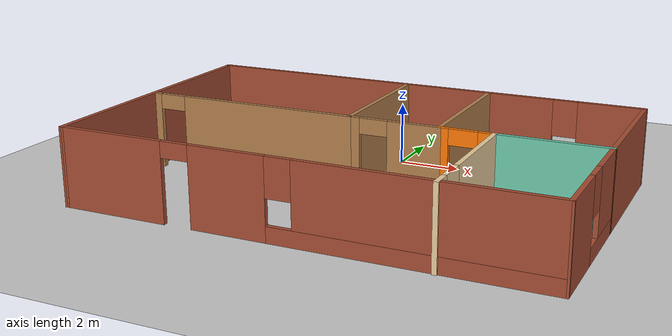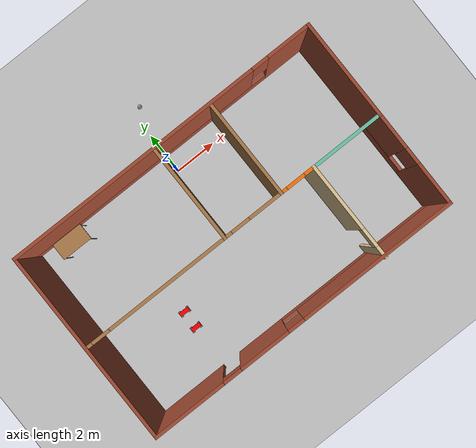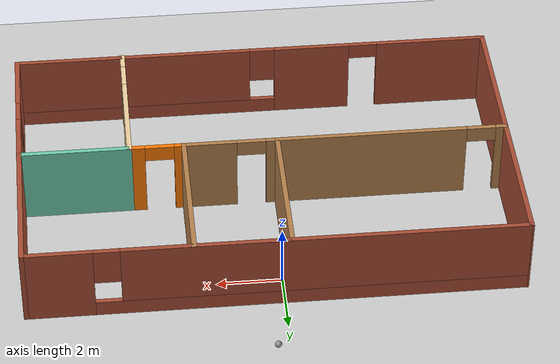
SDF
<sdf version="1.6">
 <world name="default">
  <plugin name="project1Plugin" filename="libhello.so"/>
  <light name="sun" type="directional">
   <pose>0 0 10 0 -0 0</pose>
   <diffuse>0.8 0.8 0.8 1</diffuse>
   <specular>0.2 0.2 0.2 1</specular>
   <attenuation>
    <range>1000</range>
    <constant>0.9</constant>
    <linear>0.01</linear>
    <quadratic>0.001</quadratic>
   </attenuation>
   <direction>-0.5 0.1 -0.9</direction>
  </light>
  <model name="ground_plane">
   <static>1</static>
   <link name="link">
    <collision name="collision">
     <geometry><plane><normal>0 0 1</normal><size>100 100</size></plane></geometry>
     <surface><friction><ode><mu>100</mu><mu2>50</mu2></ode></friction></surface>
    </collision>
    <visual name="visual">
     <cast_shadows>0</cast_shadows>
     <geometry><plane><normal>0 0 1</normal><size>100 100</size></plane></geometry>
     <material>
      <script><uri>file://media/materials/scripts/gazebo.material</uri><name>Gazebo/Grey</name></script>
     </material>
    </visual>
   </link>
  </model>
  <gravity>0 0 -9.8</gravity>
  <magnetic_field>6e-06 2.3e-05 -4.2e-05</magnetic_field>
  <atmosphere type="adiabatic"/>
  <physics name="default_physics" default="0" type="ode">
   <max_step_size>0.001</max_step_size>
   <real_time_factor>1</real_time_factor>
   <real_time_update_rate>1000</real_time_update_rate>
  </physics>
  <scene><ambient>0.4 0.4 0.4 1</ambient><background>0.7 0.7 0.7 1</background><shadows>1</shadows></scene>
  <spherical_coordinates>
   <surface_model>EARTH_WGS84</surface_model>
   <latitude_deg>0</latitude_deg>
   <longitude_deg>0</longitude_deg>
   <elevation>0</elevation>
   <heading_deg>0</heading_deg>
  </spherical_coordinates>
  <model name="project1building">
   <pose>0.210042 -3.70196 0 0 -0 0</pose>
   <link name="Wall_0">
    <pose>-0.005042 -4.54804 0 0 -0 0</pose>
    <visual name="Wall_0_Visual_0">
     <pose>-5.84722 0 1.25 0 -0 0</pose>
     <geometry><box><size>3.54556 0.15 2.5</size></box></geometry>
     <material>
      <script><uri>file://media/materials/scripts/gazebo.material</uri><name>Gazebo/Bricks</name></script>
      <ambient>1 1 1 1</ambient>
     </material>
     <meta><layer>0</layer></meta>
    </visual>
    <collision name="Wall_0_Collision_0">
     <geometry><box><size>3.54556 0.15 2.5</size></box></geometry>
     <pose>-5.84722 0 1.25 0 -0 0</pose>
    </collision>
    <visual name="Wall_0_Visual_1">
     <pose>-1.96069 0 1.25 0 -0 0</pose>
     <geometry><box><size>2.4275 0.15 2.5</size></box></geometry>
     <material>
      <script><uri>file://media/materials/scripts/gazebo.material</uri><name>Gazebo/Bricks</name></script>
      <ambient>1 1 1 1</ambient>
     </material>
     <meta><layer>0</layer></meta>
    </visual>
    <collision name="Wall_0_Collision_1">
     <geometry><box><size>2.4275 0.15 2.5</size></box></geometry>
     <pose>-1.96069 0 1.25 0 -0 0</pose>
    </collision>
    <visual name="Wall_0_Visual_2">
     <pose>3.43653 0 0.25 0 -0 0</pose>
     <geometry><box><size>8.36693 0.15 0.5</size></box></geometry>
     <material>
      <script><uri>file://media/materials/scripts/gazebo.material</uri><name>Gazebo/Bricks</name></script>
      <ambient>1 1 1 1</ambient>
     </material>
     <meta><layer>0</layer></meta>
    </visual>
    <collision name="Wall_0_Collision_2">
     <geometry><box><size>8.36693 0.15 0.5</size></box></geometry>
     <pose>3.43653 0 0.25 0 -0 0</pose>
    </collision>
    <visual name="Wall_0_Visual_3">
     <pose>3.83653 0 1.5 0 -0 0</pose>
     <geometry><box><size>7.56693 0.15 2</size></box></geometry>
     <material>
      <script><uri>file://media/materials/scripts/gazebo.material</uri><name>Gazebo/Bricks</name></script>
      <ambient>1 1 1 1</ambient>
     </material>
     <meta><layer>0</layer></meta>
    </visual>
    <collision name="Wall_0_Collision_3">
     <geometry><box><size>7.56693 0.15 2</size></box></geometry>
     <pose>3.83653 0 1.5 0 -0 0</pose>
    </collision>
    <visual name="Wall_0_Visual_4">
     <pose>-0.346935 0 1.9 0 -0 0</pose>
     <geometry><box><size>0.8 0.15 1.2</size></box></geometry>
     <material>
      <script><uri>file://media/materials/scripts/gazebo.material</uri><name>Gazebo/Bricks</name></script>
      <ambient>1 1 1 1</ambient>
     </material>
     <meta><layer>0</layer></meta>
    </visual>
    <collision name="Wall_0_Collision_4">
     <geometry><box><size>0.8 0.15 1.2</size></box></geometry>
     <pose>-0.346935 0 1.9 0 -0 0</pose>
    </collision>
    <visual name="Wall_0_Visual_5">
     <pose>-3.62444 0 2.25 0 -0 0</pose>
     <geometry><box><size>0.9 0.15 0.5</size></box></geometry>
     <material>
      <script><uri>file://media/materials/scripts/gazebo.material</uri><name>Gazebo/Bricks</name></script>
      <ambient>1 1 1 1</ambient>
     </material>
     <meta><layer>0</layer></meta>
    </visual>
    <collision name="Wall_0_Collision_5">
     <geometry><box><size>0.9 0.15 0.5</size></box></geometry>
     <pose>-3.62444 0 2.25 0 -0 0</pose>
    </collision>
   </link>
   <link name="Wall_11">
    <pose>4.16496 -2.30204 0 0 0 -1.5708</pose>
    <visual name="Wall_11_Visual_0">
     <pose>-0.750435 0 1.25 0 -0 0</pose>
     <geometry><box><size>3.24913 0.15 2.5</size></box></geometry>
     <material>
      <script><uri>file://media/materials/scripts/gazebo.material</uri><name>Gazebo/Grey</name></script>
      <ambient>0.921569 0.807843 0.615686 1</ambient>
     </material>
     <meta><layer>0</layer></meta>
    </visual>
    <collision name="Wall_11_Collision_0">
     <geometry><box><size>3.24913 0.15 2.5</size></box></geometry>
     <pose>-0.750435 0 1.25 0 -0 0</pose>
    </collision>
    <visual name="Wall_11_Visual_1">
     <pose>2.07457 0 1.25 0 -0 0</pose>
     <geometry><box><size>0.60087 0.15 2.5</size></box></geometry>
     <material>
      <script><uri>file://media/materials/scripts/gazebo.material</uri><name>Gazebo/Grey</name></script>
      <ambient>0.921569 0.807843 0.615686 1</ambient>
     </material>
     <meta><layer>0</layer></meta>
    </visual>
    <collision name="Wall_11_Collision_1">
     <geometry><box><size>0.60087 0.15 2.5</size></box></geometry>
     <pose>2.07457 0 1.25 0 -0 0</pose>
    </collision>
    <visual name="Wall_11_Visual_2">
     <pose>1.32413 0 2.25 0 -0 0</pose>
     <geometry><box><size>0.9 0.15 0.5</size></box></geometry>
     <material>
      <script><uri>file://media/materials/scripts/gazebo.material</uri><name>Gazebo/Grey</name></script>
      <ambient>0.921569 0.807843 0.615686 1</ambient>
     </material>
     <meta><layer>0</layer></meta>
    </visual>
    <collision name="Wall_11_Collision_2">
     <geometry><box><size>0.9 0.15 0.5</size></box></geometry>
     <pose>1.32413 0 2.25 0 -0 0</pose>
    </collision>
   </link>
   <link name="Wall_13">
    <pose>3.32546 -0.002041 0 0 -0 3.14159</pose>
    <visual name="Wall_13_Visual_0">
     <pose>-0.637533 0 1.25 0 -0 0</pose>
     <geometry><box><size>0.553935 0.15 2.5</size></box></geometry>
     <material>
      <script><uri>file://media/materials/scripts/gazebo.material</uri><name>Gazebo/Grey</name></script>
      <ambient>0.996078 0.47451 0.0196078 1</ambient>
     </material>
     <meta><layer>0</layer></meta>
    </visual>
    <collision name="Wall_13_Collision_0">
     <geometry><box><size>0.553935 0.15 2.5</size></box></geometry>
     <pose>-0.637533 0 1.25 0 -0 0</pose>
    </collision>
    <visual name="Wall_13_Visual_1">
     <pose>0.726967 0 1.25 0 -0 0</pose>
     <geometry><box><size>0.375065 0.15 2.5</size></box></geometry>
     <material>
      <script><uri>file://media/materials/scripts/gazebo.material</uri><name>Gazebo/Grey</name></script>
      <ambient>0.996078 0.47451 0.0196078 1</ambient>
     </material>
     <meta><layer>0</layer></meta>
    </visual>
    <collision name="Wall_13_Collision_1">
     <geometry><box><size>0.375065 0.15 2.5</size></box></geometry>
     <pose>0.726967 0 1.25 0 -0 0</pose>
    </collision>
    <visual name="Wall_13_Visual_2">
     <pose>0.089435 0 2.25 0 -0 0</pose>
     <geometry><box><size>0.9 0.15 0.5</size></box></geometry>
     <material>
      <script><uri>file://media/materials/scripts/gazebo.material</uri><name>Gazebo/Grey</name></script>
      <ambient>0.996078 0.47451 0.0196078 1</ambient>
     </material>
     <meta><layer>0</layer></meta>
    </visual>
    <collision name="Wall_13_Collision_2">
     <geometry><box><size>0.9 0.15 0.5</size></box></geometry>
     <pose>0.089435 0 2.25 0 -0 0</pose>
    </collision>
   </link>
   <link name="Wall_15">
    <collision name="Wall_15_Collision">
     <geometry><box><size>4.754 0.15 2.5</size></box></geometry>
     <pose>0 0 1.25 0 -0 0</pose>
    </collision>
    <visual name="Wall_15_Visual">
     <pose>0 0 1.25 0 -0 0</pose>
     <geometry><box><size>4.754 0.15 2.5</size></box></geometry>
     <material>
      <script><uri>file://media/materials/scripts/gazebo.material</uri><name>Gazebo/Bricks</name></script>
      <ambient>1 1 1 1</ambient>
     </material>
     <meta><layer>0</layer></meta>
    </visual>
    <pose>7.54996 2.29996 0 0 -0 1.5708</pose>
   </link>
   <link name="Wall_17">
    <pose>0.004958 4.60196 0 0 -0 3.14159</pose>
    <visual name="Wall_17_Visual_0">
     <pose>-6.53978 0 1.25 0 -0 0</pose>
     <geometry><box><size>2.16044 0.15 2.5</size></box></geometry>
     <material>
      <script><uri>file://media/materials/scripts/gazebo.material</uri><name>Gazebo/Bricks</name></script>
      <ambient>1 1 1 1</ambient>
     </material>
     <meta><layer>0</layer></meta>
    </visual>
    <collision name="Wall_17_Collision_0">
     <geometry><box><size>2.16044 0.15 2.5</size></box></geometry>
     <pose>-6.53978 0 1.25 0 -0 0</pose>
    </collision>
    <visual name="Wall_17_Visual_1">
     <pose>1.08022 0 0.25 0 -0 0</pose>
     <geometry><box><size>13.0796 0.15 0.5</size></box></geometry>
     <material>
      <script><uri>file://media/materials/scripts/gazebo.material</uri><name>Gazebo/Bricks</name></script>
      <ambient>1 1 1 1</ambient>
     </material>
     <meta><layer>0</layer></meta>
    </visual>
    <collision name="Wall_17_Collision_1">
     <geometry><box><size>13.0796 0.15 0.5</size></box></geometry>
     <pose>1.08022 0 0.25 0 -0 0</pose>
    </collision>
    <visual name="Wall_17_Visual_2">
     <pose>1.48022 0 1.5 0 -0 0</pose>
     <geometry><box><size>12.2796 0.15 2</size></box></geometry>
     <material>
      <script><uri>file://media/materials/scripts/gazebo.material</uri><name>Gazebo/Bricks</name></script>
      <ambient>1 1 1 1</ambient>
     </material>
     <meta><layer>0</layer></meta>
    </visual>
    <collision name="Wall_17_Collision_2">
     <geometry><box><size>12.2796 0.15 2</size></box></geometry>
     <pose>1.48022 0 1.5 0 -0 0</pose>
    </collision>
    <visual name="Wall_17_Visual_3">
     <pose>-5.05957 0 1.9 0 -0 0</pose>
     <geometry><box><size>0.8 0.15 1.2</size></box></geometry>
     <material>
      <script><uri>file://media/materials/scripts/gazebo.material</uri><name>Gazebo/Bricks</name></script>
      <ambient>1 1 1 1</ambient>
     </material>
     <meta><layer>0</layer></meta>
    </visual>
    <collision name="Wall_17_Collision_3">
     <geometry><box><size>0.8 0.15 1.2</size></box></geometry>
     <pose>-5.05957 0 1.9 0 -0 0</pose>
    </collision>
   </link>
   <link name="Wall_21">
    <collision name="Wall_21_Collision">
     <geometry><box><size>4.75 0.15 2.5</size></box></geometry>
     <pose>0 0 1.25 0 -0 0</pose>
    </collision>
    <visual name="Wall_21_Visual">
     <pose>0 0 1.25 0 -0 0</pose>
     <geometry><box><size>4.75 0.15 2.5</size></box></geometry>
     <material>
      <script><uri>file://media/materials/scripts/gazebo.material</uri><name>Gazebo/Wood</name></script>
      <ambient>1 1 1 1</ambient>
     </material>
     <meta><layer>0</layer></meta>
    </visual>
    <pose>2.48596 2.29796 0 0 -0 1.5708</pose>
   </link>
   <link name="Wall_23">
    <pose>1.03696 -0.002041 0 0 -0 3.14159</pose>
    <visual name="Wall_23_Visual_0">
     <pose>-0.666283 0 1.25 0 -0 0</pose>
     <geometry><box><size>1.71544 0.15 2.5</size></box></geometry>
     <material>
      <script><uri>file://media/materials/scripts/gazebo.material</uri><name>Gazebo/Wood</name></script>
      <ambient>1 1 1 1</ambient>
     </material>
     <meta><layer>0</layer></meta>
    </visual>
    <collision name="Wall_23_Collision_0">
     <geometry><box><size>1.71544 0.15 2.5</size></box></geometry>
     <pose>-0.666283 0 1.25 0 -0 0</pose>
    </collision>
    <visual name="Wall_23_Visual_1">
     <pose>1.30772 0 1.25 0 -0 0</pose>
     <geometry><box><size>0.432565 0.15 2.5</size></box></geometry>
     <material>
      <script><uri>file://media/materials/scripts/gazebo.material</uri><name>Gazebo/Wood</name></script>
      <ambient>1 1 1 1</ambient>
     </material>
     <meta><layer>0</layer></meta>
    </visual>
    <collision name="Wall_23_Collision_1">
     <geometry><box><size>0.432565 0.15 2.5</size></box></geometry>
     <pose>1.30772 0 1.25 0 -0 0</pose>
    </collision>
    <visual name="Wall_23_Visual_2">
     <pose>0.641435 0 2.25 0 -0 0</pose>
     <geometry><box><size>0.9 0.15 0.5</size></box></geometry>
     <material>
      <script><uri>file://media/materials/scripts/gazebo.material</uri><name>Gazebo/Wood</name></script>
      <ambient>1 1 1 1</ambient>
     </material>
     <meta><layer>0</layer></meta>
    </visual>
    <collision name="Wall_23_Collision_2">
     <geometry><box><size>0.9 0.15 0.5</size></box></geometry>
     <pose>0.641435 0 2.25 0 -0 0</pose>
    </collision>
   </link>
   <link name="Wall_25">
    <collision name="Wall_25_Collision">
     <geometry><box><size>4.75 0.15 2.5</size></box></geometry>
     <pose>0 0 1.25 0 -0 0</pose>
    </collision>
    <visual name="Wall_25_Visual">
     <pose>0 0 1.25 0 -0 0</pose>
     <geometry><box><size>4.75 0.15 2.5</size></box></geometry>
     <material>
      <script><uri>file://media/materials/scripts/gazebo.material</uri><name>Gazebo/Wood</name></script>
      <ambient>1 1 1 1</ambient>
     </material>
     <meta><layer>0</layer></meta>
    </visual>
    <pose>-0.412042 2.29796 0 0 -0 1.5708</pose>
   </link>
   <link name="Wall_27">
    <collision name="Wall_27_Collision">
     <geometry><box><size>9.30001 0.15 2.5</size></box></geometry>
     <pose>0 0 1.25 0 -0 0</pose>
    </collision>
    <visual name="Wall_27_Visual">
     <pose>0 0 1.25 0 -0 0</pose>
     <geometry><box><size>9.30001 0.15 2.5</size></box></geometry>
     <material>
      <script><uri>file://media/materials/scripts/gazebo.material</uri><name>Gazebo/Bricks</name></script>
      <ambient>1 1 1 1</ambient>
     </material>
     <meta><layer>0</layer></meta>
    </visual>
    <pose>-7.54504 0.026959 0 0 0 -1.57189</pose>
   </link>
   <link name="Wall_29">
    <pose>-3.96204 -0.002041 0 0 -0 3.14159</pose>
    <visual name="Wall_29_Visual_0">
     <pose>-0.628283 0 1.25 0 -0 0</pose>
     <geometry><box><size>5.99343 0.15 2.5</size></box></geometry>
     <material>
      <script><uri>file://media/materials/scripts/gazebo.material</uri><name>Gazebo/Wood</name></script>
      <ambient>1 1 1 1</ambient>
     </material>
     <meta><layer>0</layer></meta>
    </visual>
    <collision name="Wall_29_Collision_0">
     <geometry><box><size>5.99343 0.15 2.5</size></box></geometry>
     <pose>-0.628283 0 1.25 0 -0 0</pose>
    </collision>
    <visual name="Wall_29_Visual_1">
     <pose>3.44672 0 1.25 0 -0 0</pose>
     <geometry><box><size>0.356566 0.15 2.5</size></box></geometry>
     <material>
      <script><uri>file://media/materials/scripts/gazebo.material</uri><name>Gazebo/Wood</name></script>
      <ambient>1 1 1 1</ambient>
     </material>
     <meta><layer>0</layer></meta>
    </visual>
    <collision name="Wall_29_Collision_1">
     <geometry><box><size>0.356566 0.15 2.5</size></box></geometry>
     <pose>3.44672 0 1.25 0 -0 0</pose>
    </collision>
    <visual name="Wall_29_Visual_2">
     <pose>2.81843 0 2.25 0 -0 0</pose>
     <geometry><box><size>0.9 0.15 0.5</size></box></geometry>
     <material>
      <script><uri>file://media/materials/scripts/gazebo.material</uri><name>Gazebo/Wood</name></script>
      <ambient>1 1 1 1</ambient>
     </material>
     <meta><layer>0</layer></meta>
    </visual>
    <collision name="Wall_29_Collision_2">
     <geometry><box><size>0.9 0.15 0.5</size></box></geometry>
     <pose>2.81843 0 2.25 0 -0 0</pose>
    </collision>
   </link>
   <link name="Wall_3">
    <pose>7.54496 -2.27504 0 0 -0 1.5686</pose>
    <visual name="Wall_3_Visual_0">
     <pose>-1.29622 0 1.25 0 -0 0</pose>
     <geometry><box><size>2.10355 0.15 2.5</size></box></geometry>
     <material>
      <script><uri>file://media/materials/scripts/gazebo.material</uri><name>Gazebo/Bricks</name></script>
      <ambient>1 1 1 1</ambient>
     </material>
     <meta><layer>0</layer></meta>
    </visual>
    <collision name="Wall_3_Collision_0">
     <geometry><box><size>2.10355 0.15 2.5</size></box></geometry>
     <pose>-1.29622 0 1.25 0 -0 0</pose>
    </collision>
    <visual name="Wall_3_Visual_1">
     <pose>1.05178 0 0.25 0 -0 0</pose>
     <geometry><box><size>2.59245 0.15 0.5</size></box></geometry>
     <material>
      <script><uri>file://media/materials/scripts/gazebo.material</uri><name>Gazebo/Bricks</name></script>
      <ambient>1 1 1 1</ambient>
     </material>
     <meta><layer>0</layer></meta>
    </visual>
    <collision name="Wall_3_Collision_1">
     <geometry><box><size>2.59245 0.15 0.5</size></box></geometry>
     <pose>1.05178 0 0.25 0 -0 0</pose>
    </collision>
    <visual name="Wall_3_Visual_2">
     <pose>1.45178 0 1.5 0 -0 0</pose>
     <geometry><box><size>1.79245 0.15 2</size></box></geometry>
     <material>
      <script><uri>file://media/materials/scripts/gazebo.material</uri><name>Gazebo/Bricks</name></script>
      <ambient>1 1 1 1</ambient>
     </material>
     <meta><layer>0</layer></meta>
    </visual>
    <collision name="Wall_3_Collision_2">
     <geometry><box><size>1.79245 0.15 2</size></box></geometry>
     <pose>1.45178 0 1.5 0 -0 0</pose>
    </collision>
    <visual name="Wall_3_Visual_3">
     <pose>0.155554 0 1.9 0 -0 0</pose>
     <geometry><box><size>0.8 0.15 1.2</size></box></geometry>
     <material>
      <script><uri>file://media/materials/scripts/gazebo.material</uri><name>Gazebo/Bricks</name></script>
      <ambient>1 1 1 1</ambient>
     </material>
     <meta><layer>0</layer></meta>
    </visual>
    <collision name="Wall_3_Collision_3">
     <geometry><box><size>0.8 0.15 1.2</size></box></geometry>
     <pose>0.155554 0 1.9 0 -0 0</pose>
    </collision>
   </link>
   <link name="Wall_5">
    <collision name="Wall_5_Collision">
     <geometry><box><size>3.535 0.15 2.5</size></box></geometry>
     <pose>0 0 1.25 0 -0 0</pose>
    </collision>
    <visual name="Wall_5_Visual">
     <pose>0 0 1.25 0 -0 0</pose>
     <geometry><box><size>3.535 0.15 2.5</size></box></geometry>
     <material>
      <script><uri>file://media/materials/scripts/gazebo.material</uri><name>Gazebo/Grey</name></script>
      <ambient>0.435294 0.796078 0.67451 1</ambient>
     </material>
     <meta><layer>0</layer></meta>
    </visual>
    <pose>5.85746 -0.002041 0 0 -0 3.14159</pose>
   </link>
   <static>1</static>
  </model>
  <model name="table">
   <static>1</static>
   <link name="link">
    <collision name="surface">
     <pose>0 0 1 0 -0 0</pose>
     <geometry><box><size>1.5 0.8 0.03</size></box></geometry>
     <surface><friction><ode><mu>0.6</mu><mu2>0.6</mu2></ode></friction></surface>
    </collision>
    <visual name="visual1">
     <pose>0 0 1 0 -0 0</pose>
     <geometry><box><size>1.5 0.8 0.03</size></box></geometry>
     <material>
      <script><uri>file://media/materials/scripts/gazebo.material</uri><name>Gazebo/Wood</name></script>
     </material>
    </visual>
    <collision name="front_left_leg">
     <pose>0.68 0.38 0.5 0 -0 0</pose>
     <geometry><cylinder><radius>0.02</radius><length>1</length></cylinder></geometry>
    </collision>
    <visual name="front_left_leg">
     <pose>0.68 0.38 0.5 0 -0 0</pose>
     <geometry><cylinder><radius>0.02</radius><length>1</length></cylinder></geometry>
     <material>
      <script><uri>file://media/materials/scripts/gazebo.material</uri><name>Gazebo/Grey</name></script>
     </material>
    </visual>
    <collision name="front_right_leg">
     <pose>0.68 -0.38 0.5 0 -0 0</pose>
     <geometry><cylinder><radius>0.02</radius><length>1</length></cylinder></geometry>
    </collision>
    <visual name="front_right_leg">
     <pose>0.68 -0.38 0.5 0 -0 0</pose>
     <geometry><cylinder><radius>0.02</radius><length>1</length></cylinder></geometry>
     <material>
      <script><uri>file://media/materials/scripts/gazebo.material</uri><name>Gazebo/Grey</name></script>
     </material>
    </visual>
    <collision name="back_right_leg">
     <pose>-0.68 -0.38 0.5 0 -0 0</pose>
     <geometry><cylinder><radius>0.02</radius><length>1</length></cylinder></geometry>
    </collision>
    <visual name="back_right_leg">
     <pose>-0.68 -0.38 0.5 0 -0 0</pose>
     <geometry><cylinder><radius>0.02</radius><length>1</length></cylinder></geometry>
     <material>
      <script><uri>file://media/materials/scripts/gazebo.material</uri><name>Gazebo/Grey</name></script>
     </material>
    </visual>
    <collision name="back_left_leg">
     <pose>-0.68 0.38 0.5 0 -0 0</pose>
     <geometry><cylinder><radius>0.02</radius><length>1</length></cylinder></geometry>
    </collision>
    <visual name="back_left_leg">
     <pose>-0.68 0.38 0.5 0 -0 0</pose>
     <geometry><cylinder><radius>0.02</radius><length>1</length></cylinder></geometry>
     <material>
      <script><uri>file://media/materials/scripts/gazebo.material</uri><name>Gazebo/Grey</name></script>
     </material>
    </visual>
   </link>
   <pose>-5.51192 0.293056 0 0 -0 0</pose>
  </model>
  <model name="project1model">
   <link name="link_0">
    <pose>-3e-06 0.004024 0 0 -0 0</pose>
    <inertial>
     <mass>1</mass>
     <inertia>
      <ixx>0.166667</ixx>
      <ixy>0</ixy>
      <ixz>0</ixz>
      <iyy>0.166667</iyy>
      <iyz>0</iyz>
      <izz>0.166667</izz>
     </inertia>
    </inertial>
    <visual name="visual">
     <geometry><box><size>0.5 0.2 0.1</size></box></geometry>
     <material>
      <lighting>1</lighting>
      <script><uri>file://media/materials/scripts/gazebo.material</uri><name>Gazebo/Grey</name></script>
      <ambient>1 0 0 0</ambient>
      <diffuse>0.7 0.7 0.7 1</diffuse>
      <specular>0.01 0.01 0.01 1</specular>
      <emissive>0 0 0 1</emissive>
      <shader type="vertex"><normal_map>__default__</normal_map></shader>
     </material>
    </visual>
    <collision name="collision">
     <geometry><box><size>0.5 0.2 0.1</size></box></geometry>
     <surface>
      <friction>
       <ode><mu>1</mu><mu2>1</mu2><fdir1>0 0 0</fdir1><slip1>0</slip1><slip2>0</slip2></ode>
       <torsional>
        <coefficient>1</coefficient>
        <patch_radius>0</patch_radius>
        <surface_radius>0</surface_radius>
        <use_patch_radius>1</use_patch_radius>
        <ode><slip>0</slip></ode>
       </torsional>
      </friction>
      <bounce><restitution_coefficient>0</restitution_coefficient><threshold>1e+06</threshold></bounce>
      <contact>
       <collide_without_contact>0</collide_without_contact>
       <collide_without_contact_bitmask>1</collide_without_contact_bitmask>
       <collide_bitmask>1</collide_bitmask>
       <ode>
        <soft_cfm>0</soft_cfm>
        <soft_erp>0.2</soft_erp>
        <kp>1e+13</kp>
        <kd>1</kd>
        <max_vel>0.01</max_vel>
        <min_depth>0</min_depth>
       </ode>
       <bullet>
        <split_impulse>1</split_impulse>
        <split_impulse_penetration_threshold>-0.01</split_impulse_penetration_threshold>
        <soft_cfm>0</soft_cfm>
        <soft_erp>0.2</soft_erp>
        <kp>1e+13</kp>
        <kd>1</kd>
       </bullet>
      </contact>
     </surface>
    </collision>
   </link>
   <link name="link_1">
    <pose>-0.205 0.118964 0 1.5704 -0 0</pose>
    <inertial>
     <mass>1</mass>
     <inertia><ixx>0.145833</ixx><ixy>0</ixy><ixz>0</ixz><iyy>0.145833</iyy><iyz>0</iyz><izz>0.125</izz></inertia>
    </inertial>
    <visual name="visual">
     <geometry><cylinder><radius>0.055</radius><length>0.05</length></cylinder></geometry>
     <material>
      <lighting>1</lighting>
      <script><uri>file://media/materials/scripts/gazebo.material</uri><name>Gazebo/Grey</name></script>
      <ambient>0.3 0.3 0.3 1</ambient>
      <diffuse>0.7 0.7 0.7 1</diffuse>
      <specular>0.01 0.01 0.01 1</specular>
      <emissive>0 0 0 1</emissive>
      <shader type="vertex"><normal_map>__default__</normal_map></shader>
     </material>
    </visual>
    <collision name="collision">
     <geometry><cylinder><radius>0.055</radius><length>0.05</length></cylinder></geometry>
     <surface>
      <friction>
       <ode><mu>1</mu><mu2>1</mu2><fdir1>0 0 0</fdir1><slip1>0</slip1><slip2>0</slip2></ode>
       <torsional>
        <coefficient>1</coefficient>
        <patch_radius>0</patch_radius>
        <surface_radius>0</surface_radius>
        <use_patch_radius>1</use_patch_radius>
        <ode><slip>0</slip></ode>
       </torsional>
      </friction>
      <bounce><restitution_coefficient>0</restitution_coefficient><threshold>1e+06</threshold></bounce>
      <contact>
       <collide_without_contact>0</collide_without_contact>
       <collide_without_contact_bitmask>1</collide_without_contact_bitmask>
       <collide_bitmask>1</collide_bitmask>
       <ode>
        <soft_cfm>0</soft_cfm>
        <soft_erp>0.2</soft_erp>
        <kp>1e+13</kp>
        <kd>1</kd>
        <max_vel>0.01</max_vel>
        <min_depth>0</min_depth>
       </ode>
       <bullet>
        <split_impulse>1</split_impulse>
        <split_impulse_penetration_threshold>-0.01</split_impulse_penetration_threshold>
        <soft_cfm>0</soft_cfm>
        <soft_erp>0.2</soft_erp>
        <kp>1e+13</kp>
        <kd>1</kd>
       </bullet>
      </contact>
     </surface>
    </collision>
   </link>
   <link name="link_1_clone">
    <pose>-0.205 -0.120996 0 1.5704 -0 0</pose>
    <inertial>
     <mass>1</mass>
     <inertia><ixx>0.145833</ixx><ixy>0</ixy><ixz>0</ixz><iyy>0.145833</iyy><iyz>0</iyz><izz>0.125</izz></inertia>
    </inertial>
    <visual name="visual">
     <geometry><cylinder><radius>0.055</radius><length>0.05</length></cylinder></geometry>
     <material>
      <lighting>1</lighting>
      <script><uri>file://media/materials/scripts/gazebo.material</uri><name>Gazebo/Grey</name></script>
      <ambient>0 0.01 0.001 1</ambient>
      <diffuse>0.7 0.7 0.7 1</diffuse>
      <specular>0.01 0.01 0.01 1</specular>
      <emissive>0 0 0 1</emissive>
      <shader type="vertex"><normal_map>__default__</normal_map></shader>
     </material>
    </visual>
    <collision name="collision">
     <geometry><cylinder><radius>0.055</radius><length>0.05</length></cylinder></geometry>
     <surface>
      <friction>
       <ode><mu>1</mu><mu2>1</mu2><fdir1>0 0 0</fdir1><slip1>0</slip1><slip2>0</slip2></ode>
       <torsional>
        <coefficient>1</coefficient>
        <patch_radius>0</patch_radius>
        <surface_radius>0</surface_radius>
        <use_patch_radius>1</use_patch_radius>
        <ode><slip>0</slip></ode>
       </torsional>
      </friction>
      <bounce><restitution_coefficient>0</restitution_coefficient><threshold>1e+06</threshold></bounce>
      <contact>
       <collide_without_contact>0</collide_without_contact>
       <collide_without_contact_bitmask>1</collide_without_contact_bitmask>
       <collide_bitmask>1</collide_bitmask>
       <ode>
        <soft_cfm>0</soft_cfm>
        <soft_erp>0.2</soft_erp>
        <kp>1e+13</kp>
        <kd>1</kd>
        <max_vel>0.01</max_vel>
        <min_depth>0</min_depth>
       </ode>
       <bullet>
        <split_impulse>1</split_impulse>
        <split_impulse_penetration_threshold>-0.01</split_impulse_penetration_threshold>
        <soft_cfm>0</soft_cfm>
        <soft_erp>0.2</soft_erp>
        <kp>1e+13</kp>
        <kd>1</kd>
       </bullet>
      </contact>
     </surface>
    </collision>
    <collision name="collision_1">
     <geometry><cylinder><radius>0.055</radius><length>0.05</length></cylinder></geometry>
     <surface>
      <friction>
       <ode><mu>1</mu><mu2>1</mu2><fdir1>0 0 0</fdir1><slip1>0</slip1><slip2>0</slip2></ode>
       <torsional>
        <coefficient>1</coefficient>
        <patch_radius>0</patch_radius>
        <surface_radius>0</surface_radius>
        <use_patch_radius>1</use_patch_radius>
        <ode><slip>0</slip></ode>
       </torsional>
      </friction>
      <bounce><restitution_coefficient>0</restitution_coefficient><threshold>1e+06</threshold></bounce>
      <contact>
       <collide_without_contact>0</collide_without_contact>
       <collide_without_contact_bitmask>1</collide_without_contact_bitmask>
       <collide_bitmask>1</collide_bitmask>
       <ode>
        <soft_cfm>0</soft_cfm>
        <soft_erp>0.2</soft_erp>
        <kp>1e+13</kp>
        <kd>1</kd>
        <max_vel>0.01</max_vel>
        <min_depth>0</min_depth>
       </ode>
       <bullet>
        <split_impulse>1</split_impulse>
        <split_impulse_penetration_threshold>-0.01</split_impulse_penetration_threshold>
        <soft_cfm>0</soft_cfm>
        <soft_erp>0.2</soft_erp>
        <kp>1e+13</kp>
        <kd>1</kd>
       </bullet>
      </contact>
     </surface>
    </collision>
   </link>
   <link name="link_1_clone_0">
    <pose>0.205 0.119004 0 1.5704 -0 0</pose>
    <inertial>
     <mass>1</mass>
     <inertia><ixx>0.145833</ixx><ixy>0</ixy><ixz>0</ixz><iyy>0.145833</iyy><iyz>0</iyz><izz>0.125</izz></inertia>
    </inertial>
    <visual name="visual">
     <geometry><cylinder><radius>0.055</radius><length>0.05</length></cylinder></geometry>
     <material>
      <lighting>1</lighting>
      <script><uri>file://media/materials/scripts/gazebo.material</uri><name>Gazebo/Grey</name></script>
      <ambient>0.3 0.3 0.3 1</ambient>
      <diffuse>0.7 0.7 0.7 1</diffuse>
      <specular>0.01 0.01 0.01 1</specular>
      <emissive>0 0 0 1</emissive>
      <shader type="vertex"><normal_map>__default__</normal_map></shader>
     </material>
    </visual>
    <collision name="collision">
     <geometry><cylinder><radius>0.055</radius><length>0.05</length></cylinder></geometry>
     <surface>
      <friction>
       <ode><mu>1</mu><mu2>1</mu2><fdir1>0 0 0</fdir1><slip1>0</slip1><slip2>0</slip2></ode>
       <torsional>
        <coefficient>1</coefficient>
        <patch_radius>0</patch_radius>
        <surface_radius>0</surface_radius>
        <use_patch_radius>1</use_patch_radius>
        <ode><slip>0</slip></ode>
       </torsional>
      </friction>
      <bounce><restitution_coefficient>0</restitution_coefficient><threshold>1e+06</threshold></bounce>
      <contact>
       <collide_without_contact>0</collide_without_contact>
       <collide_without_contact_bitmask>1</collide_without_contact_bitmask>
       <collide_bitmask>1</collide_bitmask>
       <ode>
        <soft_cfm>0</soft_cfm>
        <soft_erp>0.2</soft_erp>
        <kp>1e+13</kp>
        <kd>1</kd>
        <max_vel>0.01</max_vel>
        <min_depth>0</min_depth>
       </ode>
       <bullet>
        <split_impulse>1</split_impulse>
        <split_impulse_penetration_threshold>-0.01</split_impulse_penetration_threshold>
        <soft_cfm>0</soft_cfm>
        <soft_erp>0.2</soft_erp>
        <kp>1e+13</kp>
        <kd>1</kd>
       </bullet>
      </contact>
     </surface>
    </collision>
   </link>
   <link name="link_1_clone_1">
    <pose>0.205 -0.120996 0 1.5704 -0 0</pose>
    <inertial>
     <mass>1</mass>
     <inertia><ixx>0.145833</ixx><ixy>0</ixy><ixz>0</ixz><iyy>0.145833</iyy><iyz>0</iyz><izz>0.125</izz></inertia>
    </inertial>
    <visual name="visual">
     <geometry><cylinder><radius>0.055</radius><length>0.05</length></cylinder></geometry>
     <material>
      <lighting>1</lighting>
      <script><uri>file://media/materials/scripts/gazebo.material</uri><name>Gazebo/Grey</name></script>
      <ambient>0.3 0.3 0.3 1</ambient>
      <diffuse>0.7 0.7 0.7 1</diffuse>
      <specular>0.01 0.01 0.01 1</specular>
      <emissive>0 0 0 1</emissive>
      <shader type="vertex"><normal_map>__default__</normal_map></shader>
     </material>
    </visual>
    <collision name="collision">
     <geometry><cylinder><radius>0.055</radius><length>0.05</length></cylinder></geometry>
     <surface>
      <friction>
       <ode><mu>1</mu><mu2>1</mu2><fdir1>0 0 0</fdir1><slip1>0</slip1><slip2>0</slip2></ode>
       <torsional>
        <coefficient>1</coefficient>
        <patch_radius>0</patch_radius>
        <surface_radius>0</surface_radius>
        <use_patch_radius>1</use_patch_radius>
        <ode><slip>0</slip></ode>
       </torsional>
      </friction>
      <bounce><restitution_coefficient>0</restitution_coefficient><threshold>1e+06</threshold></bounce>
      <contact>
       <collide_without_contact>0</collide_without_contact>
       <collide_without_contact_bitmask>1</collide_without_contact_bitmask>
       <collide_bitmask>1</collide_bitmask>
       <ode>
        <soft_cfm>0</soft_cfm>
        <soft_erp>0.2</soft_erp>
        <kp>1e+13</kp>
        <kd>1</kd>
        <max_vel>0.01</max_vel>
        <min_depth>0</min_depth>
       </ode>
       <bullet>
        <split_impulse>1</split_impulse>
        <split_impulse_penetration_threshold>-0.01</split_impulse_penetration_threshold>
        <soft_cfm>0</soft_cfm>
        <soft_erp>0.2</soft_erp>
        <kp>1e+13</kp>
        <kd>1</kd>
       </bullet>
      </contact>
     </surface>
    </collision>
   </link>
   <joint name="link_0_JOINT_1" type="revolute">
    <parent>link_0</parent>
    <child>link_1</child>
    <axis>
     <xyz>0 0 1</xyz>
     <use_parent_model_frame>0</use_parent_model_frame>
     <limit>
      <lower>-1.79769e+308</lower>
      <upper>1.79769e+308</upper>
      <effort>-1</effort>
      <velocity>-1</velocity>
     </limit>
     <dynamics>
      <spring_reference>0</spring_reference>
      <spring_stiffness>0</spring_stiffness>
      <damping>0</damping>
      <friction>0</friction>
     </dynamics>
    </axis>
    <physics>
     <ode><limit><cfm>0</cfm><erp>0.2</erp></limit><suspension><cfm>0</cfm><erp>0.2</erp></suspension></ode>
    </physics>
   </joint>
   <joint name="link_0_JOINT_5" type="revolute">
    <parent>link_0</parent>
    <child>link_1_clone_0</child>
    <axis>
     <xyz>0 0 1</xyz>
     <use_parent_model_frame>0</use_parent_model_frame>
     <limit>
      <lower>-1.79769e+308</lower>
      <upper>1.79769e+308</upper>
      <effort>-1</effort>
      <velocity>-1</velocity>
     </limit>
     <dynamics>
      <spring_reference>0</spring_reference>
      <spring_stiffness>0</spring_stiffness>
      <damping>0</damping>
      <friction>0</friction>
     </dynamics>
    </axis>
    <physics>
     <ode><limit><cfm>0</cfm><erp>0.2</erp></limit><suspension><cfm>0</cfm><erp>0.2</erp></suspension></ode>
    </physics>
   </joint>
   <joint name="link_0_JOINT_6" type="revolute">
    <parent>link_0</parent>
    <child>link_1_clone_1</child>
    <axis>
     <xyz>1 0 0</xyz>
     <use_parent_model_frame>0</use_parent_model_frame>
     <limit>
      <lower>-1.79769e+308</lower>
      <upper>1.79769e+308</upper>
      <effort>-1</effort>
      <velocity>-1</velocity>
     </limit>
     <dynamics>
      <spring_reference>0</spring_reference>
      <spring_stiffness>0</spring_stiffness>
      <damping>0</damping>
      <friction>0</friction>
     </dynamics>
    </axis>
    <physics>
     <ode><limit><cfm>0</cfm><erp>0.2</erp></limit><suspension><cfm>0</cfm><erp>0.2</erp></suspension></ode>
    </physics>
   </joint>
   <joint name="link_0_JOINT_7" type="revolute">
    <parent>link_0</parent>
    <child>link_1_clone</child>
    <axis>
     <xyz>0 0 1</xyz>
     <use_parent_model_frame>0</use_parent_model_frame>
     <limit>
      <lower>-1.79769e+308</lower>
      <upper>1.79769e+308</upper>
      <effort>-1</effort>
      <velocity>-1</velocity>
     </limit>
     <dynamics>
      <spring_reference>0</spring_reference>
      <spring_stiffness>0</spring_stiffness>
      <damping>0</damping>
      <friction>0</friction>
     </dynamics>
    </axis>
    <physics>
     <ode><limit><cfm>0</cfm><erp>0.2</erp></limit><suspension><cfm>0</cfm><erp>0.2</erp></suspension></ode>
    </physics>
   </joint>
   <static>0</static>
   <pose>-3.79097 -6.05865 0.055008 3.6e-05 1.6e-05 -0.009772</pose>
  </model>
  <model name="project1model_clone">
   <link name="link_0">
    <pose>-3e-06 0.004024 0 0 -0 0</pose>
    <inertial>
     <mass>1</mass>
     <inertia>
      <ixx>0.166667</ixx>
      <ixy>0</ixy>
      <ixz>0</ixz>
      <iyy>0.166667</iyy>
      <iyz>0</iyz>
      <izz>0.166667</izz>
     </inertia>
    </inertial>
    <visual name="visual">
     <geometry><box><size>0.5 0.2 0.1</size></box></geometry>
     <material>
      <lighting>1</lighting>
      <script><uri>file://media/materials/scripts/gazebo.material</uri><name>Gazebo/Grey</name></script>
      <ambient>1 0 0 0</ambient>
      <diffuse>0.7 0.7 0.7 1</diffuse>
      <specular>0.01 0.01 0.01 1</specular>
      <emissive>0 0 0 1</emissive>
      <shader type="vertex"><normal_map>__default__</normal_map></shader>
     </material>
    </visual>
    <collision name="collision">
     <geometry><box><size>0.5 0.2 0.1</size></box></geometry>
     <surface>
      <friction>
       <ode><mu>1</mu><mu2>1</mu2><fdir1>0 0 0</fdir1><slip1>0</slip1><slip2>0</slip2></ode>
       <torsional>
        <coefficient>1</coefficient>
        <patch_radius>0</patch_radius>
        <surface_radius>0</surface_radius>
        <use_patch_radius>1</use_patch_radius>
        <ode><slip>0</slip></ode>
       </torsional>
      </friction>
      <bounce><restitution_coefficient>0</restitution_coefficient><threshold>1e+06</threshold></bounce>
      <contact>
       <collide_without_contact>0</collide_without_contact>
       <collide_without_contact_bitmask>1</collide_without_contact_bitmask>
       <collide_bitmask>1</collide_bitmask>
       <ode>
        <soft_cfm>0</soft_cfm>
        <soft_erp>0.2</soft_erp>
        <kp>1e+13</kp>
        <kd>1</kd>
        <max_vel>0.01</max_vel>
        <min_depth>0</min_depth>
       </ode>
       <bullet>
        <split_impulse>1</split_impulse>
        <split_impulse_penetration_threshold>-0.01</split_impulse_penetration_threshold>
        <soft_cfm>0</soft_cfm>
        <soft_erp>0.2</soft_erp>
        <kp>1e+13</kp>
        <kd>1</kd>
       </bullet>
      </contact>
     </surface>
    </collision>
   </link>
   <link name="link_1">
    <pose>-0.205 0.118964 0 1.5704 -0 0</pose>
    <inertial>
     <mass>1</mass>
     <inertia><ixx>0.145833</ixx><ixy>0</ixy><ixz>0</ixz><iyy>0.145833</iyy><iyz>0</iyz><izz>0.125</izz></inertia>
    </inertial>
    <visual name="visual">
     <geometry><cylinder><radius>0.055</radius><length>0.05</length></cylinder></geometry>
     <material>
      <lighting>1</lighting>
      <script><uri>file://media/materials/scripts/gazebo.material</uri><name>Gazebo/Grey</name></script>
      <ambient>0.3 0.3 0.3 1</ambient>
      <diffuse>0.7 0.7 0.7 1</diffuse>
      <specular>0.01 0.01 0.01 1</specular>
      <emissive>0 0 0 1</emissive>
      <shader type="vertex"><normal_map>__default__</normal_map></shader>
     </material>
    </visual>
    <collision name="collision">
     <geometry><cylinder><radius>0.055</radius><length>0.05</length></cylinder></geometry>
     <surface>
      <friction>
       <ode><mu>1</mu><mu2>1</mu2><fdir1>0 0 0</fdir1><slip1>0</slip1><slip2>0</slip2></ode>
       <torsional>
        <coefficient>1</coefficient>
        <patch_radius>0</patch_radius>
        <surface_radius>0</surface_radius>
        <use_patch_radius>1</use_patch_radius>
        <ode><slip>0</slip></ode>
       </torsional>
      </friction>
      <bounce><restitution_coefficient>0</restitution_coefficient><threshold>1e+06</threshold></bounce>
      <contact>
       <collide_without_contact>0</collide_without_contact>
       <collide_without_contact_bitmask>1</collide_without_contact_bitmask>
       <collide_bitmask>1</collide_bitmask>
       <ode>
        <soft_cfm>0</soft_cfm>
        <soft_erp>0.2</soft_erp>
        <kp>1e+13</kp>
        <kd>1</kd>
        <max_vel>0.01</max_vel>
        <min_depth>0</min_depth>
       </ode>
       <bullet>
        <split_impulse>1</split_impulse>
        <split_impulse_penetration_threshold>-0.01</split_impulse_penetration_threshold>
        <soft_cfm>0</soft_cfm>
        <soft_erp>0.2</soft_erp>
        <kp>1e+13</kp>
        <kd>1</kd>
       </bullet>
      </contact>
     </surface>
    </collision>
   </link>
   <link name="link_1_clone">
    <pose>-0.205 -0.120996 0 1.5704 -0 0</pose>
    <inertial>
     <mass>1</mass>
     <inertia><ixx>0.145833</ixx><ixy>0</ixy><ixz>0</ixz><iyy>0.145833</iyy><iyz>0</iyz><izz>0.125</izz></inertia>
    </inertial>
    <visual name="visual">
     <geometry><cylinder><radius>0.055</radius><length>0.05</length></cylinder></geometry>
     <material>
      <lighting>1</lighting>
      <script><uri>file://media/materials/scripts/gazebo.material</uri><name>Gazebo/Grey</name></script>
      <ambient>0 0.01 0.001 1</ambient>
      <diffuse>0.7 0.7 0.7 1</diffuse>
      <specular>0.01 0.01 0.01 1</specular>
      <emissive>0 0 0 1</emissive>
      <shader type="vertex"><normal_map>__default__</normal_map></shader>
     </material>
    </visual>
    <collision name="collision">
     <geometry><cylinder><radius>0.055</radius><length>0.05</length></cylinder></geometry>
     <surface>
      <friction>
       <ode><mu>1</mu><mu2>1</mu2><fdir1>0 0 0</fdir1><slip1>0</slip1><slip2>0</slip2></ode>
       <torsional>
        <coefficient>1</coefficient>
        <patch_radius>0</patch_radius>
        <surface_radius>0</surface_radius>
        <use_patch_radius>1</use_patch_radius>
        <ode><slip>0</slip></ode>
       </torsional>
      </friction>
      <bounce><restitution_coefficient>0</restitution_coefficient><threshold>1e+06</threshold></bounce>
      <contact>
       <collide_without_contact>0</collide_without_contact>
       <collide_without_contact_bitmask>1</collide_without_contact_bitmask>
       <collide_bitmask>1</collide_bitmask>
       <ode>
        <soft_cfm>0</soft_cfm>
        <soft_erp>0.2</soft_erp>
        <kp>1e+13</kp>
        <kd>1</kd>
        <max_vel>0.01</max_vel>
        <min_depth>0</min_depth>
       </ode>
       <bullet>
        <split_impulse>1</split_impulse>
        <split_impulse_penetration_threshold>-0.01</split_impulse_penetration_threshold>
        <soft_cfm>0</soft_cfm>
        <soft_erp>0.2</soft_erp>
        <kp>1e+13</kp>
        <kd>1</kd>
       </bullet>
      </contact>
     </surface>
    </collision>
    <collision name="collision_1">
     <geometry><cylinder><radius>0.055</radius><length>0.05</length></cylinder></geometry>
     <surface>
      <friction>
       <ode><mu>1</mu><mu2>1</mu2><fdir1>0 0 0</fdir1><slip1>0</slip1><slip2>0</slip2></ode>
       <torsional>
        <coefficient>1</coefficient>
        <patch_radius>0</patch_radius>
        <surface_radius>0</surface_radius>
        <use_patch_radius>1</use_patch_radius>
        <ode><slip>0</slip></ode>
       </torsional>
      </friction>
      <bounce><restitution_coefficient>0</restitution_coefficient><threshold>1e+06</threshold></bounce>
      <contact>
       <collide_without_contact>0</collide_without_contact>
       <collide_without_contact_bitmask>1</collide_without_contact_bitmask>
       <collide_bitmask>1</collide_bitmask>
       <ode>
        <soft_cfm>0</soft_cfm>
        <soft_erp>0.2</soft_erp>
        <kp>1e+13</kp>
        <kd>1</kd>
        <max_vel>0.01</max_vel>
        <min_depth>0</min_depth>
       </ode>
       <bullet>
        <split_impulse>1</split_impulse>
        <split_impulse_penetration_threshold>-0.01</split_impulse_penetration_threshold>
        <soft_cfm>0</soft_cfm>
        <soft_erp>0.2</soft_erp>
        <kp>1e+13</kp>
        <kd>1</kd>
       </bullet>
      </contact>
     </surface>
    </collision>
   </link>
   <link name="link_1_clone_0">
    <pose>0.205 0.119004 0 1.5704 -0 0</pose>
    <inertial>
     <mass>1</mass>
     <inertia><ixx>0.145833</ixx><ixy>0</ixy><ixz>0</ixz><iyy>0.145833</iyy><iyz>0</iyz><izz>0.125</izz></inertia>
    </inertial>
    <visual name="visual">
     <geometry><cylinder><radius>0.055</radius><length>0.05</length></cylinder></geometry>
     <material>
      <lighting>1</lighting>
      <script><uri>file://media/materials/scripts/gazebo.material</uri><name>Gazebo/Grey</name></script>
      <ambient>0.3 0.3 0.3 1</ambient>
      <diffuse>0.7 0.7 0.7 1</diffuse>
      <specular>0.01 0.01 0.01 1</specular>
      <emissive>0 0 0 1</emissive>
      <shader type="vertex"><normal_map>__default__</normal_map></shader>
     </material>
    </visual>
    <collision name="collision">
     <geometry><cylinder><radius>0.055</radius><length>0.05</length></cylinder></geometry>
     <surface>
      <friction>
       <ode><mu>1</mu><mu2>1</mu2><fdir1>0 0 0</fdir1><slip1>0</slip1><slip2>0</slip2></ode>
       <torsional>
        <coefficient>1</coefficient>
        <patch_radius>0</patch_radius>
        <surface_radius>0</surface_radius>
        <use_patch_radius>1</use_patch_radius>
        <ode><slip>0</slip></ode>
       </torsional>
      </friction>
      <bounce><restitution_coefficient>0</restitution_coefficient><threshold>1e+06</threshold></bounce>
      <contact>
       <collide_without_contact>0</collide_without_contact>
       <collide_without_contact_bitmask>1</collide_without_contact_bitmask>
       <collide_bitmask>1</collide_bitmask>
       <ode>
        <soft_cfm>0</soft_cfm>
        <soft_erp>0.2</soft_erp>
        <kp>1e+13</kp>
        <kd>1</kd>
        <max_vel>0.01</max_vel>
        <min_depth>0</min_depth>
       </ode>
       <bullet>
        <split_impulse>1</split_impulse>
        <split_impulse_penetration_threshold>-0.01</split_impulse_penetration_threshold>
        <soft_cfm>0</soft_cfm>
        <soft_erp>0.2</soft_erp>
        <kp>1e+13</kp>
        <kd>1</kd>
       </bullet>
      </contact>
     </surface>
    </collision>
   </link>
   <link name="link_1_clone_1">
    <pose>0.205 -0.120996 0 1.5704 -0 0</pose>
    <inertial>
     <mass>1</mass>
     <inertia><ixx>0.145833</ixx><ixy>0</ixy><ixz>0</ixz><iyy>0.145833</iyy><iyz>0</iyz><izz>0.125</izz></inertia>
    </inertial>
    <visual name="visual">
     <geometry><cylinder><radius>0.055</radius><length>0.05</length></cylinder></geometry>
     <material>
      <lighting>1</lighting>
      <script><uri>file://media/materials/scripts/gazebo.material</uri><name>Gazebo/Grey</name></script>
      <ambient>0.3 0.3 0.3 1</ambient>
      <diffuse>0.7 0.7 0.7 1</diffuse>
      <specular>0.01 0.01 0.01 1</specular>
      <emissive>0 0 0 1</emissive>
      <shader type="vertex"><normal_map>__default__</normal_map></shader>
     </material>
    </visual>
    <collision name="collision">
     <geometry><cylinder><radius>0.055</radius><length>0.05</length></cylinder></geometry>
     <surface>
      <friction>
       <ode><mu>1</mu><mu2>1</mu2><fdir1>0 0 0</fdir1><slip1>0</slip1><slip2>0</slip2></ode>
       <torsional>
        <coefficient>1</coefficient>
        <patch_radius>0</patch_radius>
        <surface_radius>0</surface_radius>
        <use_patch_radius>1</use_patch_radius>
        <ode><slip>0</slip></ode>
       </torsional>
      </friction>
      <bounce><restitution_coefficient>0</restitution_coefficient><threshold>1e+06</threshold></bounce>
      <contact>
       <collide_without_contact>0</collide_without_contact>
       <collide_without_contact_bitmask>1</collide_without_contact_bitmask>
       <collide_bitmask>1</collide_bitmask>
       <ode>
        <soft_cfm>0</soft_cfm>
        <soft_erp>0.2</soft_erp>
        <kp>1e+13</kp>
        <kd>1</kd>
        <max_vel>0.01</max_vel>
        <min_depth>0</min_depth>
       </ode>
       <bullet>
        <split_impulse>1</split_impulse>
        <split_impulse_penetration_threshold>-0.01</split_impulse_penetration_threshold>
        <soft_cfm>0</soft_cfm>
        <soft_erp>0.2</soft_erp>
        <kp>1e+13</kp>
        <kd>1</kd>
       </bullet>
      </contact>
     </surface>
    </collision>
   </link>
   <joint name="link_0_JOINT_1" type="revolute">
    <parent>link_0</parent>
    <child>link_1</child>
    <axis>
     <xyz>0 0 1</xyz>
     <use_parent_model_frame>0</use_parent_model_frame>
     <limit>
      <lower>-1.79769e+308</lower>
      <upper>1.79769e+308</upper>
      <effort>-1</effort>
      <velocity>-1</velocity>
     </limit>
     <dynamics>
      <spring_reference>0</spring_reference>
      <spring_stiffness>0</spring_stiffness>
      <damping>0</damping>
      <friction>0</friction>
     </dynamics>
    </axis>
    <physics>
     <ode><limit><cfm>0</cfm><erp>0.2</erp></limit><suspension><cfm>0</cfm><erp>0.2</erp></suspension></ode>
    </physics>
   </joint>
   <joint name="link_0_JOINT_5" type="revolute">
    <parent>link_0</parent>
    <child>link_1_clone_0</child>
    <axis>
     <xyz>0 0 1</xyz>
     <use_parent_model_frame>0</use_parent_model_frame>
     <limit>
      <lower>-1.79769e+308</lower>
      <upper>1.79769e+308</upper>
      <effort>-1</effort>
      <velocity>-1</velocity>
     </limit>
     <dynamics>
      <spring_reference>0</spring_reference>
      <spring_stiffness>0</spring_stiffness>
      <damping>0</damping>
      <friction>0</friction>
     </dynamics>
    </axis>
    <physics>
     <ode><limit><cfm>0</cfm><erp>0.2</erp></limit><suspension><cfm>0</cfm><erp>0.2</erp></suspension></ode>
    </physics>
   </joint>
   <joint name="link_0_JOINT_6" type="revolute">
    <parent>link_0</parent>
    <child>link_1_clone_1</child>
    <axis>
     <xyz>1 0 0</xyz>
     <use_parent_model_frame>0</use_parent_model_frame>
     <limit>
      <lower>-1.79769e+308</lower>
      <upper>1.79769e+308</upper>
      <effort>-1</effort>
      <velocity>-1</velocity>
     </limit>
     <dynamics>
      <spring_reference>0</spring_reference>
      <spring_stiffness>0</spring_stiffness>
      <damping>0</damping>
      <friction>0</friction>
     </dynamics>
    </axis>
    <physics>
     <ode><limit><cfm>0</cfm><erp>0.2</erp></limit><suspension><cfm>0</cfm><erp>0.2</erp></suspension></ode>
    </physics>
   </joint>
   <joint name="link_0_JOINT_7" type="revolute">
    <parent>link_0</parent>
    <child>link_1_clone</child>
    <axis>
     <xyz>0 0 1</xyz>
     <use_parent_model_frame>0</use_parent_model_frame>
     <limit>
      <lower>-1.79769e+308</lower>
      <upper>1.79769e+308</upper>
      <effort>-1</effort>
      <velocity>-1</velocity>
     </limit>
     <dynamics>
      <spring_reference>0</spring_reference>
      <spring_stiffness>0</spring_stiffness>
      <damping>0</damping>
      <friction>0</friction>
     </dynamics>
    </axis>
    <physics>
     <ode><limit><cfm>0</cfm><erp>0.2</erp></limit><suspension><cfm>0</cfm><erp>0.2</erp></suspension></ode>
    </physics>
   </joint>
   <static>0</static>
   <pose>-3.76318 -5.18395 0.05501 1.6e-05 1e-05 -0.009667</pose>
  </model>
  <model name="project1world">
   <link name="link_0">
    <inertial>
     <mass>1</mass>
     <inertia><ixx>0.1</ixx><ixy>0</ixy><ixz>0</ixz><iyy>0.1</iyy><iyz>0</iyz><izz>0.1</izz></inertia>
    </inertial>
    <visual name="visual">
     <geometry><sphere><radius>0.1</radius></sphere></geometry>
     <material>
      <lighting>1</lighting>
      <script><uri>file://media/materials/scripts/gazebo.material</uri><name>Gazebo/Grey</name></script>
      <ambient>1 1 1 1</ambient>
      <diffuse>1 1 1 1</diffuse>
      <specular>1 1 1 1</specular>
      <emissive>1 1 1 1</emissive>
      <shader type="vertex"><normal_map>__default__</normal_map></shader>
     </material>
    </visual>
    <collision name="collision">
     <geometry><sphere><radius>0.1</radius></sphere></geometry>
     <surface>
      <friction>
       <ode><mu>1</mu><mu2>1</mu2><fdir1>0 0 0</fdir1><slip1>0</slip1><slip2>0</slip2></ode>
       <torsional>
        <coefficient>1</coefficient>
        <patch_radius>0</patch_radius>
        <surface_radius>0</surface_radius>
        <use_patch_radius>1</use_patch_radius>
        <ode><slip>0</slip></ode>
       </torsional>
      </friction>
      <bounce><restitution_coefficient>0</restitution_coefficient><threshold>1e+06</threshold></bounce>
      <contact>
       <collide_without_contact>0</collide_without_contact>
       <collide_without_contact_bitmask>1</collide_without_contact_bitmask>
       <collide_bitmask>1</collide_bitmask>
       <ode>
        <soft_cfm>0</soft_cfm>
        <soft_erp>0.2</soft_erp>
        <kp>1e+13</kp>
        <kd>1</kd>
        <max_vel>0.01</max_vel>
        <min_depth>0</min_depth>
       </ode>
       <bullet>
        <split_impulse>1</split_impulse>
        <split_impulse_penetration_threshold>-0.01</split_impulse_penetration_threshold>
        <soft_cfm>0</soft_cfm>
        <soft_erp>0.2</soft_erp>
        <kp>1e+13</kp>
        <kd>1</kd>
       </bullet>
      </contact>
     </surface>
    </collision>
   </link>
   <static>0</static>
   <pose>0.428395 3.20982 0.5 0 -0 0</pose>
  </model>
 </world>
</sdf>
